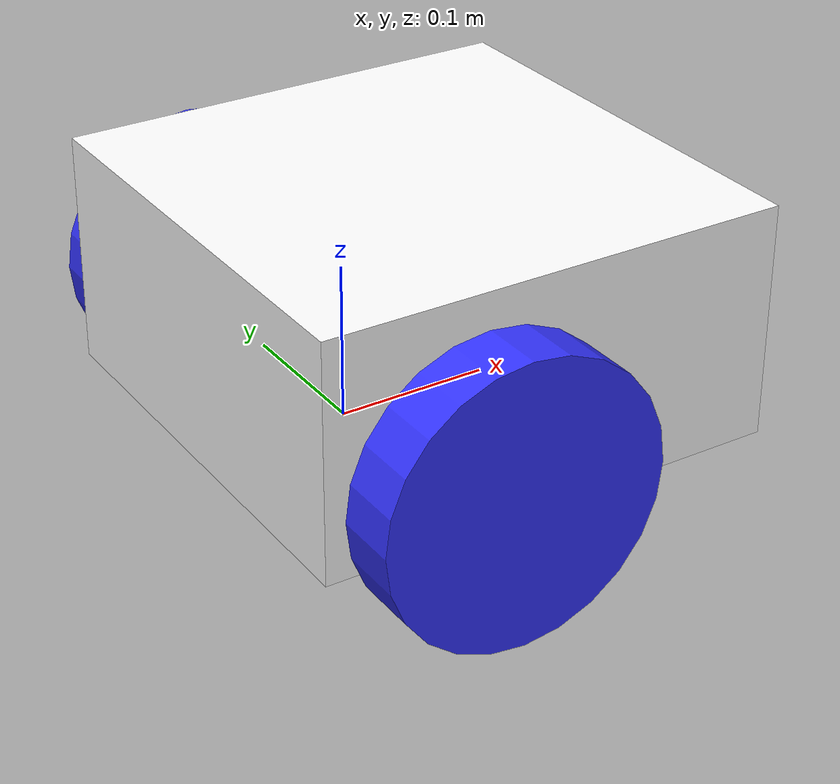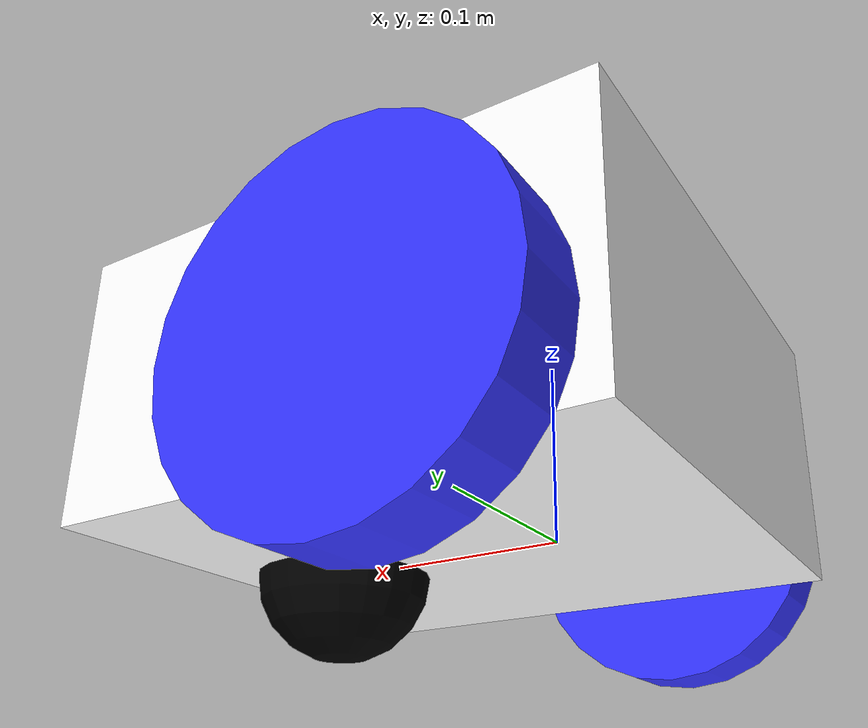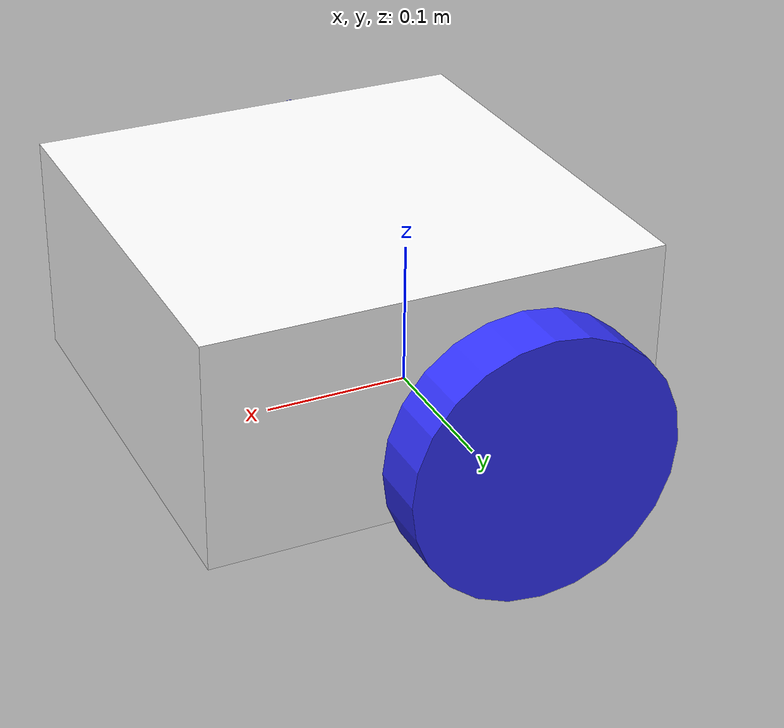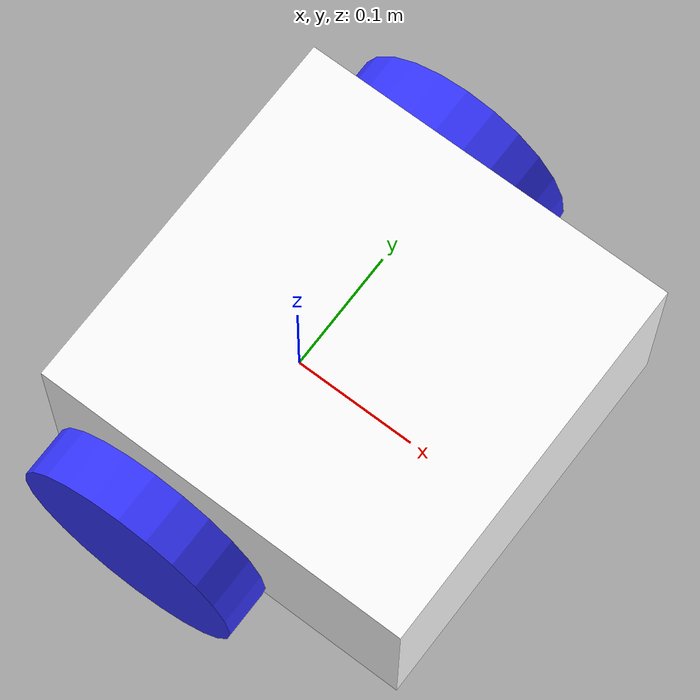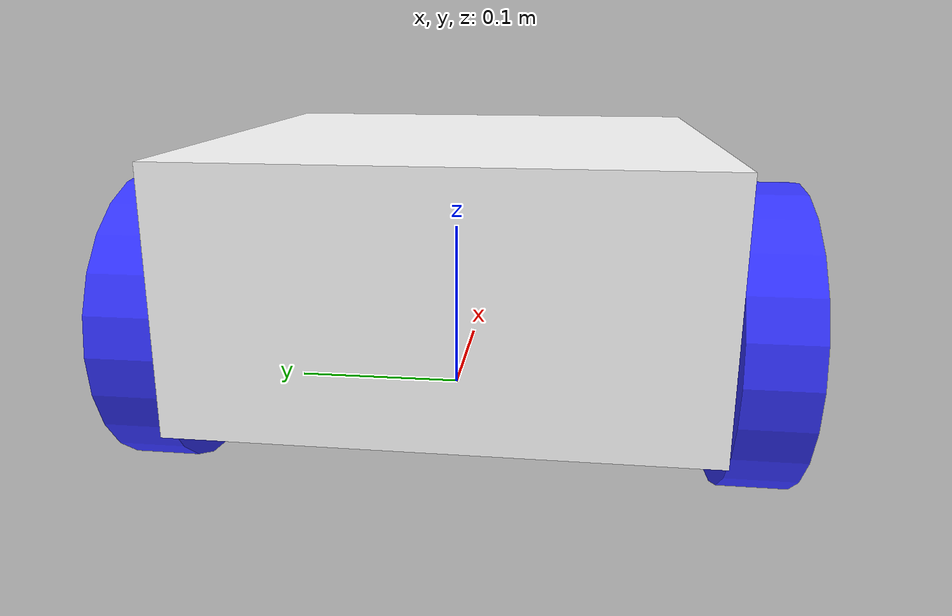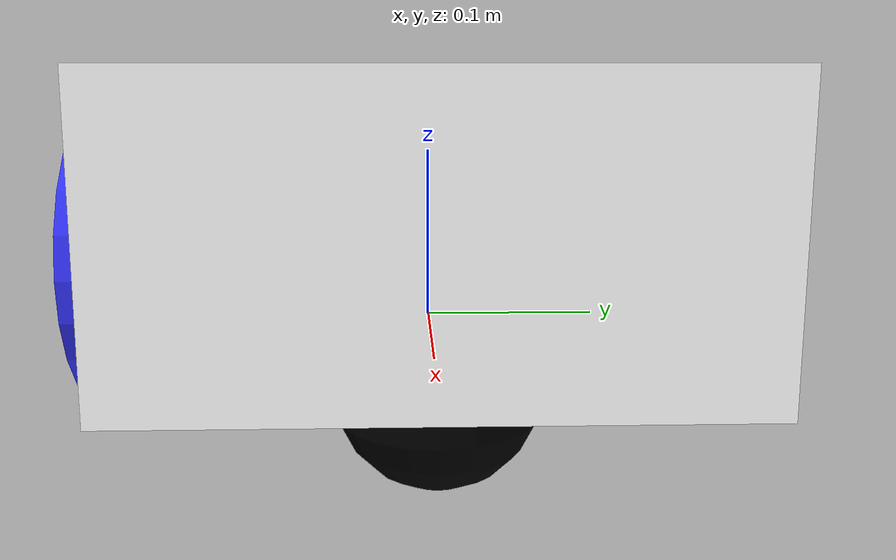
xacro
<?xml version ="1.0"?>
<robot xmlns:xacro="http://www.ros.org/wiki/xacro">

    <xacro:include filename="inertia_macros.xacro"/>

    <material name="white">
        <color rgba="1 1 1 1"/>
    </material>

    <material name="orange">
        <color rgba="1 0.3 0.1 1"/>
    </material>

    <material name="blue">
        <color rgba="0.2 0.2 1 1"/>
    </material>

    <material name="black">
        <color rgba="0 0 0 1"/>
    </material>

    <!-- Base link -->

    <link name="base_link">
    </link>

    <!-- Base footprint link -->

    <link name="base_footprint"></link>

    <joint name="base_footprint_joint" type="fixed">
        <parent link="base_link"/>
        <child link="base_footprint"/>
        <origin xyz="0 0 0" rpy="0 0 0"/>
    </joint>

    <!-- Chassis Link -->

    <link name="chassis_link">
        <visual>
            <origin xyz="0.15 0 0.075" rpy="0 0 0"/>
            <geometry>
                <box size="0.3 0.3 0.15"/>
            </geometry>
            <material name="white"/>
        </visual>
        <collision>
            <origin xyz="0.15 0 0.075" rpy="0 0 0"/>
            <geometry>
                <box size="0.3 0.3 0.15"/>
            </geometry>
        </collision>
        <xacro:inertial_box mass="0.5" x="0.3" y="0.3" z="0.15">
            <origin xyz="0.15 0 0.075" rpy="0 0 0"/>
        </xacro:inertial_box>
    </link>

    <joint name="chassis_joint" type="fixed">
        <parent link="base_link"/>
        <child link="chassis_link"/>
        <origin xyz="-0.1 0 0" rpy="0 0 0"/>
    </joint>

    <gazebo reference="chassis_link">
        <material>Gazebo/White</material>
    </gazebo>

    <!-- Left Wheel Link -->

    <link name="left_wheel_link">
        <visual>
            <origin xyz="0 0 0" rpy="0 0 0"/>
            <geometry>
                <cylinder radius="0.09" length="0.04"/>
            </geometry>
            <material name="blue"/>
        </visual>
        <collision>
            <origin xyz="0 0 0" rpy="0 0 0"/>
            <geometry>
                <cylinder radius="0.09" length="0.04"/>
            </geometry>
        </collision>
        <xacro:inertial_cylinder mass="0.1" length="0.04" radius="0.09">
            <origin xyz="0 0 0" rpy="0 0 0"/>
        </xacro:inertial_cylinder>
    </link>

    <joint name="left_wheel_joint" type="continuous">
        <parent link="base_link"/>
        <child link="left_wheel_link"/>
        <origin xyz="0 0.175 0.04" rpy="-${pi/2} 0 0"/>
        <axis xyz="0 0 1"/>
    </joint>

    <gazebo reference="left_wheel_link">
        <material>Gazebo/Blue</material>
    </gazebo>

    <!-- Right Wheel Link -->
    <link name="right_wheel_link">
        <visual>
            <origin xyz="0 0 0" rpy="0 0 0"/>
            <geometry>
                <cylinder radius="0.09" length="0.04"/>
            </geometry>
            <material name="blue"/>
        </visual>
        <collision>
            <origin xyz="0 0 0" rpy="0 0 0"/>
            <geometry>
                <cylinder radius="0.09" length="0.04"/>
            </geometry>
        </collision>
        <xacro:inertial_cylinder mass="0.1" length="0.04" radius="0.09">
            <origin xyz="0 0 0" rpy="0 0 0"/>
        </xacro:inertial_cylinder>
    </link>

    <joint name="right_wheel_joint" type="continuous">
        <parent link="base_link"/>
        <child link="right_wheel_link"/>
        <origin xyz="0 -0.175 0.04" rpy="${pi/2} 0 0"/>
        <axis xyz="0 0 -1"/>
    </joint>
    <gazebo reference="right_wheel_link">
        <material>Gazebo/Blue</material>
    </gazebo>

    <!-- In this configuration y-axis of right will be up and keft will be down we want the z-axis of both to point outward -->

    <!-- Caster Wheel Link -->
    <link name="caster_link">
        <visual>
            <origin xyz="0 0 0" rpy="0 0 0"/>
            <geometry>
                <sphere radius="0.05"/>
            </geometry>
            <material name="black"/>
        </visual>
        <collision>
            <origin xyz="0 0 0" rpy="0 0 0"/>
            <geometry>
                <sphere radius="0.05"/>
            </geometry>
        </collision>
        <xacro:inertial_sphere mass="0.1" radius="0.05">
            <origin xyz="0 0 0" rpy="0 0 0"/>
        </xacro:inertial_sphere>
    </link>

    <joint name="caster_joint" type="fixed">
        <parent link="chassis_link"/>
        <child link="caster_link"/>
        <origin xyz="0.24 0 0" rpy="0 0 0"/>
    </joint>

    <gazebo reference="caster_link">
        <material>Gazebo/Black</material>
        <mu1 value="0.001"/>
        <mu2 value="0.001"/>
    </gazebo>

</robot>
